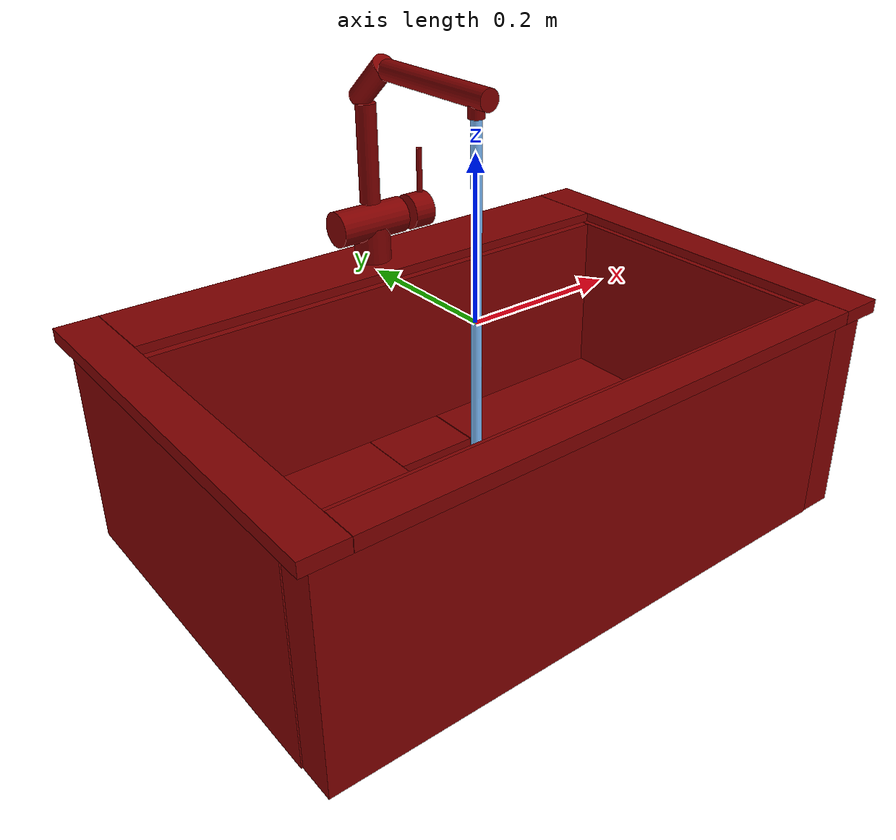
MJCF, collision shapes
<mujoco model="model">
  <compiler angle="radian"/>
  <asset>
    <mesh file="visuals/handle.obj" name="handle_vis"/>
    <mesh file="visuals/Body001.obj" name="Body001_vis"/>
    <mesh file="visuals/Funnel001.obj" name="Funnel001_vis"/>
    <mesh file="visuals/spout.obj" name="spout_vis"/>
    <texture file="visuals/T_BC001.png" name="Body001_material" type="2d"/>
    <material name="Body001_material" rgba="1 1 1 1.0" texture="Body001_material" shininess="0.6803424060344696" specular="0.7381"/>
    <texture file="visuals/T_BC001.png" name="handle_material" type="2d"/>
    <material name="handle_material" rgba="1 1 1 1.0" texture="handle_material" shininess="0.2803424060344696" specular="1"/>
    <texture file="visuals/T_BC001.png" name="Funnel001_material" type="2d"/>
    <material name="Funnel001_material" rgba="1 1 1 1.0" texture="Funnel001_material" shininess="0.2803424060344696" specular="1"/>
    <texture file="visuals/T_BC001.png" name="spout_material" type="2d"/>
    <material name="spout_material" rgba="1 1 1 1.0" texture="spout_material" shininess="0.2803424060344696" specular="1"/>
  </asset>
  <default>
    <default class="visual">
      <geom conaffinity="0" contype="0" group="1" type="mesh"/>
    </default>
    <default class="collision">
      <geom group="0" rgba="0.5 0 0 0.5"/>
    </default>
    <default class="spawn">
      <geom group="0" rgba="1 1 1 0.5" contype="0" conaffinity="0"/>
      <site group="0" rgba="1 1 1 0.5"/>
    </default>
    <default class="region">
      <geom group="1" conaffinity="0" contype="0" rgba="0 1 0 0"/>
    </default>
  </default>
  <worldbody>
    <body>
      <body name="object">
        <geom mesh="Body001_vis" type="mesh" solimp="0.998 0.998 0.001" solref="0.001 1" density="100" friction="0.95 0.3 0.1" class="visual" material="Body001_material"/>
        <geom class="collision" type="box" pos="-0.357462 0.022212 -0.135699" size="0.022984236478805542 0.2331775724887848 0.13575202226638794" quat="1.0 0.0 0.0 0.0"/>
        <geom class="collision" type="box" pos="0.354540 -0.000222 -0.135699" size="0.02422627992928028 0.25632357597351074 0.13575194776058197" quat="1.0 0.0 0.0 0.0"/>
        <geom class="collision" type="box" pos="-0.020490 0.206552 -0.135699" size="0.34995174407958984 0.052213750779628754 0.13575191795825958" quat="1.0 0.0 0.0 0.0"/>
        <geom class="collision" type="box" pos="-0.023106 -0.230568 -0.135700" size="0.35565271973609924 0.02671852894127369 0.1357518881559372" quat="1.0 0.0 0.0 0.0"/>
        <geom class="collision" type="box" pos="-0.366793 0.000000 0.003160" size="0.026208236813545227 0.2661292254924774 0.008420041762292385" quat="1.0 0.0 0.0 0.0"/>
        <geom class="collision" type="box" pos="0.365811 0.000000 0.003160" size="0.027190038934350014 0.2661292254924774 0.008420038037002087" quat="1.0 0.0 0.0 0.0"/>
        <geom class="collision" type="box" pos="-0.000854 -0.244232 0.003160" size="0.3392276167869568 0.021897604689002037 0.008420036174356937" quat="1.0 0.0 0.0 0.0"/>
        <geom class="collision" type="box" pos="-0.000854 0.215536 0.003160" size="0.33922746777534485 0.050592899322509766 0.008420034311711788" quat="1.0 0.0 0.0 0.0"/>
        <geom class="collision" type="box" pos="0.194877 -0.024422 -0.243394" size="0.14021103084087372 0.18389678001403809 0.02805747464299202" quat="1.0 0.0 0.0 0.0"/>
        <geom class="collision" type="box" pos="-0.196030 -0.024422 -0.243394" size="0.14021095633506775 0.1838967204093933 0.02805747091770172" quat="1.0 0.0 0.0 0.0"/>
        <geom class="collision" type="box" pos="-0.000893 -0.119340 -0.243394" size="0.05441328138113022 0.08897862583398819 0.028057469055056572" quat="1.0 0.0 0.0 0.0"/>
        <geom class="collision" type="box" pos="-0.000893 0.119201 -0.243394" size="0.054413240402936935 0.040589965879917145 0.028057465329766273" quat="1.0 0.0 0.0 0.0"/>
        <geom class="collision" type="cylinder" pos="0.000685 0.211444 0.035838" size="0.02336934022605419 0.022742383182048798" quat="1.0 0.0 0.0 0.0"/>
        <geom class="collision" type="cylinder" pos="-0.003834 0.211444 0.063443" size="0.023010553792119026 0.04808701202273369" quat="0.7071068286895752 0.0 -0.7071067690849304 0.0"/>
        <body name="handle">
          <joint axis="1.0 0.0 0.0" pos="0.068833 0.211613 0.064092" limited="true" name="handle_joint_hinge_0" type="hinge" range="-0.7853981633974483 0.7853981633974483" damping="1" frictionloss="1" armature=".01" stiffness="0.05"/>
          <joint axis="0.0 1.0 0.0" pos="0.068833 0.211613 0.064092" limited="true" name="handle_joint_hinge_1" type="hinge" range="0.0 0.17453292519943295" damping="1" frictionloss="1" armature=".01" stiffness="0.05"/>
          <geom mesh="handle_vis" type="mesh" solimp="0.998 0.998 0.001" solref="0.001 1" density="100" friction="0.95 0.3 0.1" class="visual" material="handle_material"/>
          <geom class="collision" type="cylinder" pos="0.070456 0.211444 0.063443" size="0.023010550066828728 0.014551625587046146" quat="0.7071068286895752 0.0 -0.7071067690849304 0.0"/>
          <geom class="collision" type="cylinder" pos="0.077750 0.212212 0.115083" size="0.0037490269169211388 0.0287446491420269" quat="7.549790126404332e-08 -0.0 -1.0 -0.0"/>
        </body>
        <body name="Funnel001">
          <joint axis="0.0 0.0 1.0" pos="0.000341 0.023146 -0.239528" limited="true" name="Funnel001_joint" range="0.0 0.05" type="slide" damping="1" frictionloss="1" armature=".01" stiffness="0.05"/>
          <geom mesh="Funnel001_vis" type="mesh" solimp="0.998 0.998 0.001" solref="0.001 1" density="100" friction="0.95 0.3 0.1" class="visual" material="Funnel001_material"/>
          <geom class="collision" type="cylinder" pos="-0.000472 0.023136 -0.238409" size="0.04696207121014595 0.004018215928226709" quat="1.0 0.0 0.0 0.0"/>
          <geom class="collision" type="cylinder" pos="-0.000472 0.023136 -0.233851" size="0.006461434997618198 0.0018289702711626887" quat="1.0 0.0 0.0 0.0"/>
        </body>
        <body name="spout">
          <joint axis="0.0 0.0 1.0" pos="0.000437 0.211429 0.176312" limited="true" name="spout_joint" range="-0.7853981633974483 0.7853981633974483" type="hinge" damping="1" frictionloss="1" armature=".01" stiffness="0.05"/>
          <site type="cylinder" rgba="0.5 0.75 1 1" size="0.00637557078152895 0.2281561940908432" pos="0.000511 -0.000383 0.009755" name="water"/>
          <geom mesh="spout_vis" type="mesh" solimp="0.998 0.998 0.001" solref="0.001 1" density="100" friction="0.95 0.3 0.1" class="visual" material="spout_material"/>
          <geom class="collision" type="cylinder" pos="0.000483 0.070383 0.259668" size="0.012713657692074776 0.09240955114364624" quat="2.247645092268158e-08 8.429369557916289e-08 -0.7071068286895752 -0.7071067094802856"/>
          <geom class="collision" type="cylinder" pos="0.000454 0.211585 0.150864" size="0.012904489412903786 0.06219162791967392" quat="7.549790126404332e-08 -0.0 -1.0 -0.0"/>
          <geom class="collision" type="cylinder" pos="0.000483 0.195325 0.240926" size="0.014660518616437912 0.03633870184421539" quat="3.2521985104949636e-08 -1.0958445528785887e-07 0.9077298641204834 0.419555127620697"/>
          <geom class="collision" type="cylinder" pos="0.000454 -0.000359 0.243907" size="0.00948744360357523 0.007031399291008711" quat="7.549790126404332e-08 -0.0 -1.0 -0.0"/>
        </body>
        <geom class="region" name="reg_main" type="box" pos="0.0 0.0 -0.1299355" size="0.393001 0.266129 0.1415155"/>
        <geom class="region" name="reg_basin" type="box" pos="-0.0016795000000000004 -0.027162000000000006 -0.108769" size="0.3279955 0.18320399999999998 0.10605200000000001"/>
      </body>
    </body>
  </worldbody>
  <actuator>
    <motor name="handle_joint_hinge_0_actuator" joint="handle_joint_hinge_0" gear="10"/>
    <motor name="handle_joint_hinge_1_actuator" joint="handle_joint_hinge_1" gear="10"/>
    <motor name="Funnel001_joint_actuator" joint="Funnel001_joint" gear="10"/>
    <motor name="spout_joint_actuator" joint="spout_joint" gear="10"/>
  </actuator>
</mujoco>
